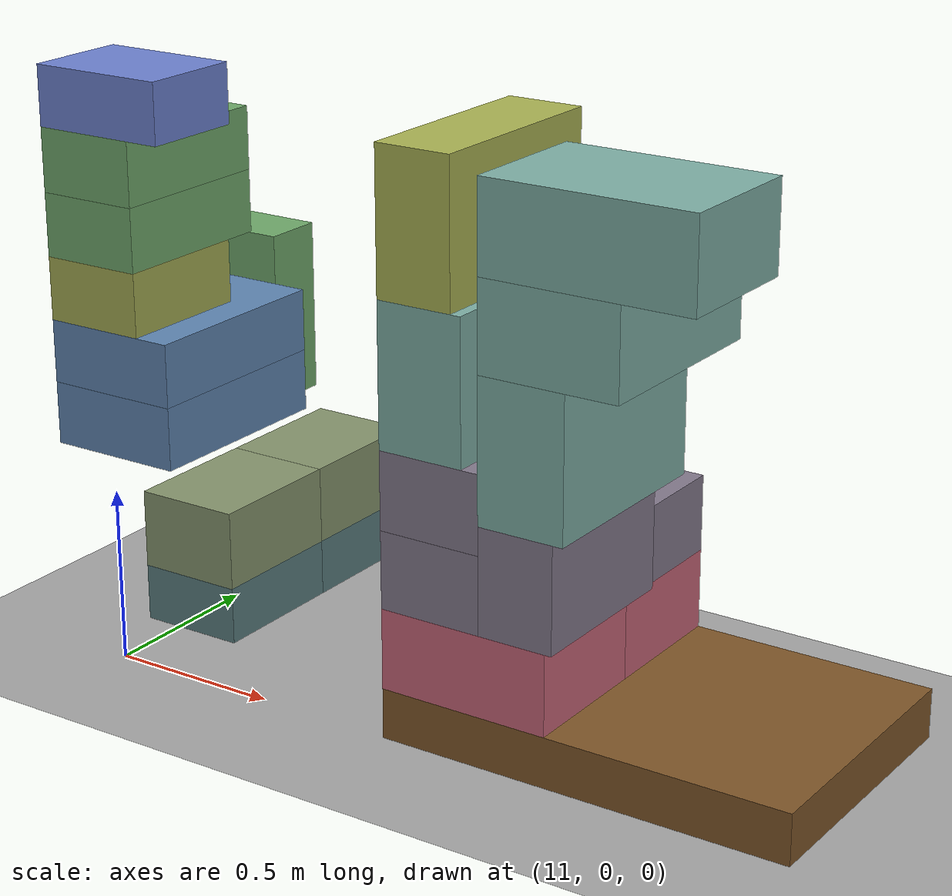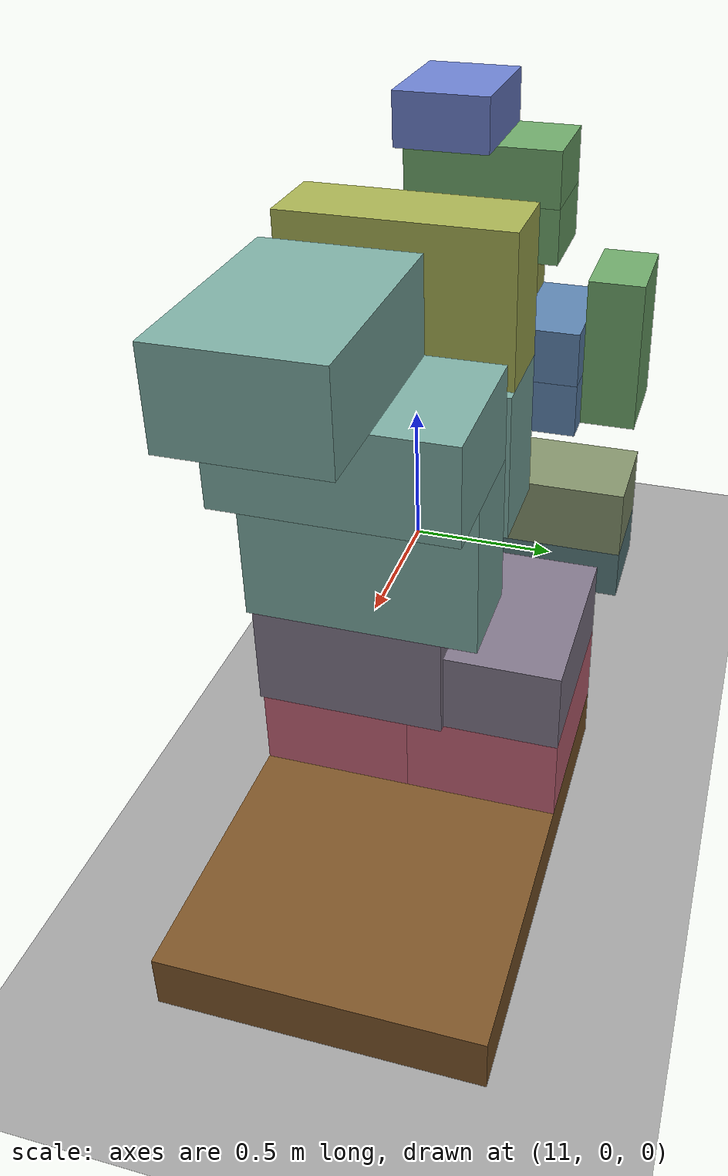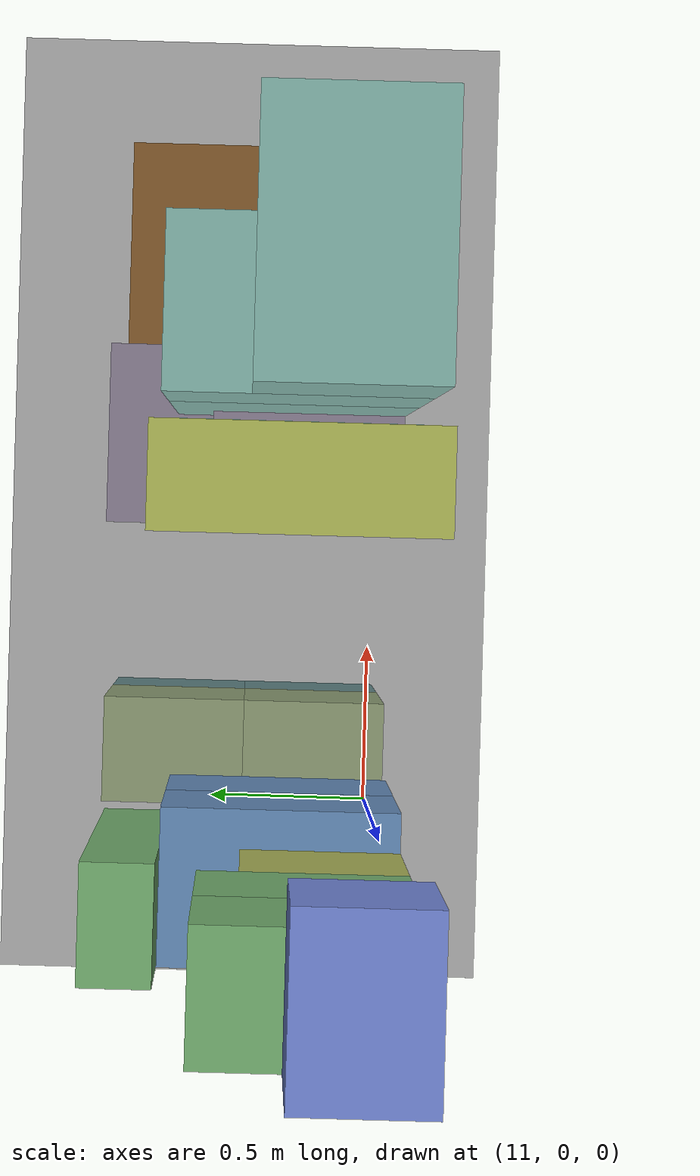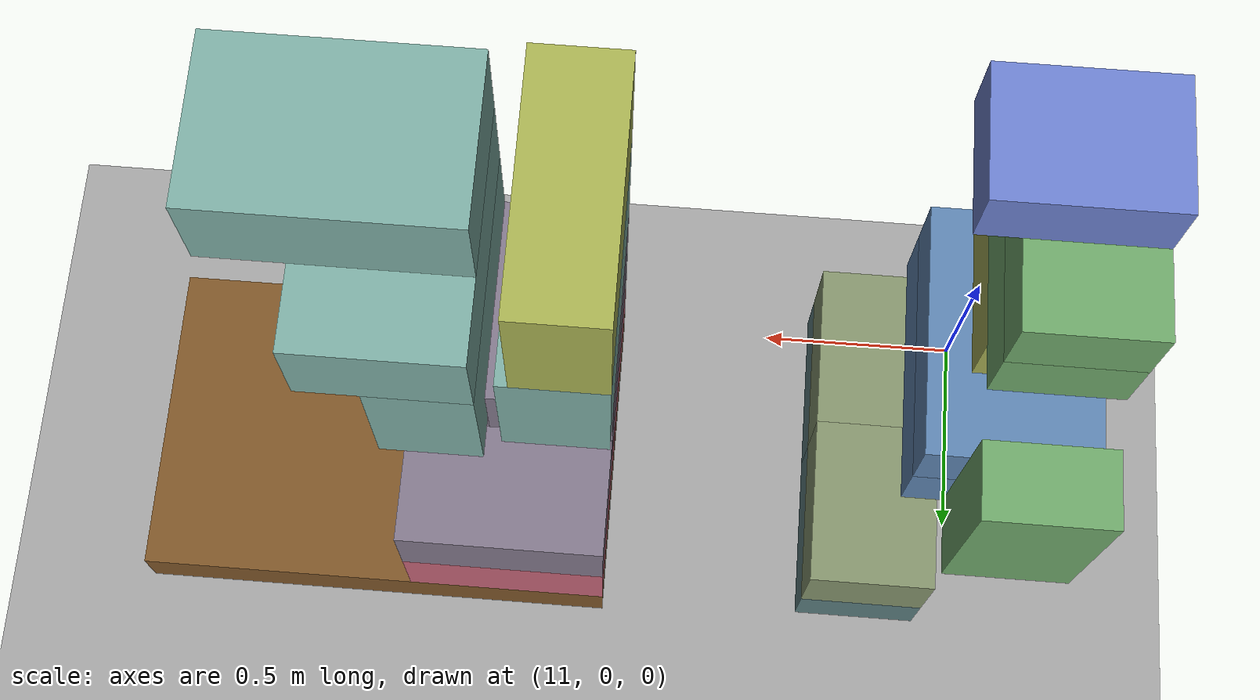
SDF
<sdf version="1.10">
 <world name="pallet_towers">
  <model name="ground_plane">
   <static>true</static>
   <link name="link">
    <collision name="collision">
     <geometry><plane><normal>0 0 1</normal><size>30 30</size></plane></geometry>
     <surface>
      <friction><ode><mu>0.35</mu><mu2>0.35</mu2></ode></friction>
      <bounce><restitution_coefficient>0</restitution_coefficient><threshold>100000</threshold></bounce>
      <contact><ode><kp>1000000</kp><kd>100</kd><max_vel>1</max_vel><min_depth>0.0005</min_depth></ode></contact>
     </surface>
    </collision>
    <visual name="visual">
     <geometry><plane><normal>0 0 1</normal><size>30 30</size></plane></geometry>
     <material><ambient>0.65 0.65 0.65 1</ambient><diffuse>0.65 0.65 0.65 1</diffuse></material>
    </visual>
   </link>
  </model>
  <model name="box_p07_0005_CHEESE_002_CHEESE">
   <static>false</static>
   <pose>11.25 0.6 0.224 0 0 0</pose>
   <link name="body">
    <inertial>
     <mass>9.5</mass>
     <inertia>
      <ixx>0.146933333</ixx>
      <ixy>0</ixy>
      <ixz>0</ixz>
      <iyy>0.0915166667</iyy>
      <iyz>0</iyz>
      <izz>0.197916667</izz>
     </inertia>
    </inertial>
    <collision name="collision">
     <geometry><box><size>0.3 0.4 0.16</size></box></geometry>
     <surface>
      <friction><ode><mu>0.35</mu><mu2>0.35</mu2></ode></friction>
      <bounce><restitution_coefficient>0</restitution_coefficient><threshold>100000</threshold></bounce>
      <contact><ode><kp>1000000</kp><kd>100</kd><max_vel>1</max_vel><min_depth>0.0005</min_depth></ode></contact>
     </surface>
    </collision>
    <visual name="visual">
     <geometry><box><size>0.3 0.4 0.16</size></box></geometry>
     <material>
      <ambient>0.356862745 0.494117647 0.501960784 1</ambient>
      <diffuse>0.356862745 0.494117647 0.501960784 1</diffuse>
      <specular>0.05 0.05 0.05 1</specular>
     </material>
    </visual>
   </link>
  </model>
  <model name="box_p07_0008_CHEESE_005_CHEESE">
   <static>false</static>
   <pose>11.25 0.2 0.224 0 0 0</pose>
   <link name="body">
    <inertial>
     <mass>9.5</mass>
     <inertia>
      <ixx>0.146933333</ixx>
      <ixy>0</ixy>
      <ixz>0</ixz>
      <iyy>0.0915166667</iyy>
      <iyz>0</iyz>
      <izz>0.197916667</izz>
     </inertia>
    </inertial>
    <collision name="collision">
     <geometry><box><size>0.3 0.4 0.16</size></box></geometry>
     <surface>
      <friction><ode><mu>0.35</mu><mu2>0.35</mu2></ode></friction>
      <bounce><restitution_coefficient>0</restitution_coefficient><threshold>100000</threshold></bounce>
      <contact><ode><kp>1000000</kp><kd>100</kd><max_vel>1</max_vel><min_depth>0.0005</min_depth></ode></contact>
     </surface>
    </collision>
    <visual name="visual">
     <geometry><box><size>0.3 0.4 0.16</size></box></geometry>
     <material>
      <ambient>0.356862745 0.494117647 0.501960784 1</ambient>
      <diffuse>0.356862745 0.494117647 0.501960784 1</diffuse>
      <specular>0.05 0.05 0.05 1</specular>
     </material>
    </visual>
   </link>
  </model>
  <model name="box_p07_0012_FRZVEG_003_FRZVEG">
   <static>false</static>
   <pose>11.25 0.2 0.414 0 0 0</pose>
   <link name="body">
    <inertial>
     <mass>7.5</mass>
     <inertia><ixx>0.13025</ixx><ixy>0</ixy><ixz>0</ixz><iyy>0.0865</iyy><iyz>0</iyz><izz>0.15625</izz></inertia>
    </inertial>
    <collision name="collision">
     <geometry><box><size>0.3 0.4 0.22</size></box></geometry>
     <surface>
      <friction><ode><mu>0.35</mu><mu2>0.35</mu2></ode></friction>
      <bounce><restitution_coefficient>0</restitution_coefficient><threshold>100000</threshold></bounce>
      <contact><ode><kp>1000000</kp><kd>100</kd><max_vel>1</max_vel><min_depth>0.0005</min_depth></ode></contact>
     </surface>
    </collision>
    <visual name="visual">
     <geometry><box><size>0.3 0.4 0.22</size></box></geometry>
     <material>
      <ambient>0.525490196 0.584313725 0.431372549 1</ambient>
      <diffuse>0.525490196 0.584313725 0.431372549 1</diffuse>
      <specular>0.05 0.05 0.05 1</specular>
     </material>
    </visual>
   </link>
  </model>
  <model name="box_p07_0013_FRZVEG_004_FRZVEG">
   <static>false</static>
   <pose>11.25 0.6 0.414 0 0 0</pose>
   <link name="body">
    <inertial>
     <mass>7.5</mass>
     <inertia><ixx>0.13025</ixx><ixy>0</ixy><ixz>0</ixz><iyy>0.0865</iyy><iyz>0</iyz><izz>0.15625</izz></inertia>
    </inertial>
    <collision name="collision">
     <geometry><box><size>0.3 0.4 0.22</size></box></geometry>
     <surface>
      <friction><ode><mu>0.35</mu><mu2>0.35</mu2></ode></friction>
      <bounce><restitution_coefficient>0</restitution_coefficient><threshold>100000</threshold></bounce>
      <contact><ode><kp>1000000</kp><kd>100</kd><max_vel>1</max_vel><min_depth>0.0005</min_depth></ode></contact>
     </surface>
    </collision>
    <visual name="visual">
     <geometry><box><size>0.3 0.4 0.22</size></box></geometry>
     <material>
      <ambient>0.525490196 0.584313725 0.431372549 1</ambient>
      <diffuse>0.525490196 0.584313725 0.431372549 1</diffuse>
      <specular>0.05 0.05 0.05 1</specular>
     </material>
    </visual>
   </link>
  </model>
  <model name="box_p07_0017_PIZZA_002_PIZZA">
   <static>false</static>
   <pose>11 0.3 0.694 0 0 0</pose>
   <link name="body">
    <inertial>
     <mass>6</mass>
     <inertia><ixx>0.1962</ixx><ixy>0</ixy><ixz>0</ixz><iyy>0.0962</iyy><iyz>0</iyz><izz>0.26</izz></inertia>
    </inertial>
    <collision name="collision">
     <geometry><box><size>0.4 0.6 0.18</size></box></geometry>
     <surface>
      <friction><ode><mu>0.35</mu><mu2>0.35</mu2></ode></friction>
      <bounce><restitution_coefficient>0</restitution_coefficient><threshold>100000</threshold></bounce>
      <contact><ode><kp>1000000</kp><kd>100</kd><max_vel>1</max_vel><min_depth>0.0005</min_depth></ode></contact>
     </surface>
    </collision>
    <visual name="visual">
     <geometry><box><size>0.4 0.6 0.18</size></box></geometry>
     <material>
      <ambient>0.37254902 0.525490196 0.701960784 1</ambient>
      <diffuse>0.37254902 0.525490196 0.701960784 1</diffuse>
      <specular>0.05 0.05 0.05 1</specular>
     </material>
    </visual>
   </link>
  </model>
  <model name="box_p07_0019_PIZZA_004_PIZZA">
   <static>false</static>
   <pose>11 0.3 0.874 0 0 0</pose>
   <link name="body">
    <inertial>
     <mass>6</mass>
     <inertia><ixx>0.1962</ixx><ixy>0</ixy><ixz>0</ixz><iyy>0.0962</iyy><iyz>0</iyz><izz>0.26</izz></inertia>
    </inertial>
    <collision name="collision">
     <geometry><box><size>0.4 0.6 0.18</size></box></geometry>
     <surface>
      <friction><ode><mu>0.35</mu><mu2>0.35</mu2></ode></friction>
      <bounce><restitution_coefficient>0</restitution_coefficient><threshold>100000</threshold></bounce>
      <contact><ode><kp>1000000</kp><kd>100</kd><max_vel>1</max_vel><min_depth>0.0005</min_depth></ode></contact>
     </surface>
    </collision>
    <visual name="visual">
     <geometry><box><size>0.4 0.6 0.18</size></box></geometry>
     <material>
      <ambient>0.37254902 0.525490196 0.701960784 1</ambient>
      <diffuse>0.37254902 0.525490196 0.701960784 1</diffuse>
      <specular>0.05 0.05 0.05 1</specular>
     </material>
    </visual>
   </link>
  </model>
  <model name="box_p07_0026_SALMON_005_SALMON">
   <static>false</static>
   <pose>10.95 0.2 1.054 0 0 0</pose>
   <link name="body">
    <inertial>
     <mass>8.5</mass>
     <inertia>
      <ixx>0.136283333</ixx>
      <ixy>0</ixy>
      <ixz>0</ixz>
      <iyy>0.0867</iyy>
      <iyz>0</iyz>
      <izz>0.177083333</izz>
     </inertia>
    </inertial>
    <collision name="collision">
     <geometry><box><size>0.3 0.4 0.18</size></box></geometry>
     <surface>
      <friction><ode><mu>0.35</mu><mu2>0.35</mu2></ode></friction>
      <bounce><restitution_coefficient>0</restitution_coefficient><threshold>100000</threshold></bounce>
      <contact><ode><kp>1000000</kp><kd>100</kd><max_vel>1</max_vel><min_depth>0.0005</min_depth></ode></contact>
     </surface>
    </collision>
    <visual name="visual">
     <geometry><box><size>0.3 0.4 0.18</size></box></geometry>
     <material>
      <ambient>0.647058824 0.678431373 0.329411765 1</ambient>
      <diffuse>0.647058824 0.678431373 0.329411765 1</diffuse>
      <specular>0.05 0.05 0.05 1</specular>
     </material>
    </visual>
   </link>
  </model>
  <model name="box_p07_0029_CHICKEN_002_CHICKEN">
   <static>false</static>
   <pose>10.95 0.25 1.234 0 0 0</pose>
   <link name="body">
    <inertial>
     <mass>10</mass>
     <inertia>
      <ixx>0.235333333</ixx>
      <ixy>0</ixy>
      <ixz>0</ixz>
      <iyy>0.102</iyy>
      <iyz>0</iyz>
      <izz>0.283333333</izz>
     </inertia>
    </inertial>
    <collision name="collision">
     <geometry><box><size>0.3 0.5 0.18</size></box></geometry>
     <surface>
      <friction><ode><mu>0.35</mu><mu2>0.35</mu2></ode></friction>
      <bounce><restitution_coefficient>0</restitution_coefficient><threshold>100000</threshold></bounce>
      <contact><ode><kp>1000000</kp><kd>100</kd><max_vel>1</max_vel><min_depth>0.0005</min_depth></ode></contact>
     </surface>
    </collision>
    <visual name="visual">
     <geometry><box><size>0.3 0.5 0.18</size></box></geometry>
     <material>
      <ambient>0.439215686 0.666666667 0.423529412 1</ambient>
      <diffuse>0.439215686 0.666666667 0.423529412 1</diffuse>
      <specular>0.05 0.05 0.05 1</specular>
     </material>
    </visual>
   </link>
  </model>
  <model name="box_p07_0031_CHICKEN_004_CHICKEN">
   <static>false</static>
   <pose>10.95 0.69 0.854 0 0 0</pose>
   <link name="body">
    <inertial>
     <mass>10</mass>
     <inertia>
      <ixx>0.235333333</ixx>
      <ixy>0</ixy>
      <ixz>0</ixz>
      <iyy>0.283333333</iyy>
      <iyz>0</iyz>
      <izz>0.102</izz>
     </inertia>
    </inertial>
    <collision name="collision">
     <geometry><box><size>0.3 0.18 0.5</size></box></geometry>
     <surface>
      <friction><ode><mu>0.35</mu><mu2>0.35</mu2></ode></friction>
      <bounce><restitution_coefficient>0</restitution_coefficient><threshold>100000</threshold></bounce>
      <contact><ode><kp>1000000</kp><kd>100</kd><max_vel>1</max_vel><min_depth>0.0005</min_depth></ode></contact>
     </surface>
    </collision>
    <visual name="visual">
     <geometry><box><size>0.3 0.18 0.5</size></box></geometry>
     <material>
      <ambient>0.439215686 0.666666667 0.423529412 1</ambient>
      <diffuse>0.439215686 0.666666667 0.423529412 1</diffuse>
      <specular>0.05 0.05 0.05 1</specular>
     </material>
    </visual>
   </link>
  </model>
  <model name="box_p07_0032_CHICKEN_005_CHICKEN">
   <static>false</static>
   <pose>10.95 0.25 1.414 0 0 0</pose>
   <link name="body">
    <inertial>
     <mass>10</mass>
     <inertia>
      <ixx>0.235333333</ixx>
      <ixy>0</ixy>
      <ixz>0</ixz>
      <iyy>0.102</iyy>
      <iyz>0</iyz>
      <izz>0.283333333</izz>
     </inertia>
    </inertial>
    <collision name="collision">
     <geometry><box><size>0.3 0.5 0.18</size></box></geometry>
     <surface>
      <friction><ode><mu>0.35</mu><mu2>0.35</mu2></ode></friction>
      <bounce><restitution_coefficient>0</restitution_coefficient><threshold>100000</threshold></bounce>
      <contact><ode><kp>1000000</kp><kd>100</kd><max_vel>1</max_vel><min_depth>0.0005</min_depth></ode></contact>
     </surface>
    </collision>
    <visual name="visual">
     <geometry><box><size>0.3 0.5 0.18</size></box></geometry>
     <material>
      <ambient>0.439215686 0.666666667 0.423529412 1</ambient>
      <diffuse>0.439215686 0.666666667 0.423529412 1</diffuse>
      <specular>0.05 0.05 0.05 1</specular>
     </material>
    </visual>
   </link>
  </model>
  <model name="box_p07_0037_BEEF_004_BEEF">
   <static>false</static>
   <pose>11 0.15 1.589 0 0 0</pose>
   <link name="body">
    <inertial>
     <mass>12</mass>
     <inertia><ixx>0.1189</ixx><ixy>0</ixy><ixz>0</ixz><iyy>0.1889</iyy><iyz>0</iyz><izz>0.25</izz></inertia>
    </inertial>
    <collision name="collision">
     <geometry><box><size>0.4 0.3 0.17</size></box></geometry>
     <surface>
      <friction><ode><mu>0.35</mu><mu2>0.35</mu2></ode></friction>
      <bounce><restitution_coefficient>0</restitution_coefficient><threshold>100000</threshold></bounce>
      <contact><ode><kp>1000000</kp><kd>100</kd><max_vel>1</max_vel><min_depth>0.0005</min_depth></ode></contact>
     </surface>
    </collision>
    <visual name="visual">
     <geometry><box><size>0.4 0.3 0.17</size></box></geometry>
     <material>
      <ambient>0.431372549 0.51372549 0.823529412 1</ambient>
      <diffuse>0.431372549 0.51372549 0.823529412 1</diffuse>
      <specular>0.05 0.05 0.05 1</specular>
     </material>
    </visual>
   </link>
  </model>
  <model name="pallet_08_8">
   <static>false</static>
   <pose>12.5 0.4 0.072 0 0 0</pose>
   <link name="body">
    <inertial>
     <mass>25</mass>
     <inertia>
      <ixx>1.37653333</ixx>
      <ixy>0</ixy>
      <ixz>0</ixz>
      <iyy>3.0432</iyy>
      <iyz>0</iyz>
      <izz>4.33333333</izz>
     </inertia>
    </inertial>
    <collision name="collision">
     <geometry><box><size>1.2 0.8 0.144</size></box></geometry>
     <surface>
      <friction><ode><mu>0.35</mu><mu2>0.35</mu2></ode></friction>
      <bounce><restitution_coefficient>0</restitution_coefficient><threshold>100000</threshold></bounce>
      <contact><ode><kp>1000000</kp><kd>100</kd><max_vel>1</max_vel><min_depth>0.0005</min_depth></ode></contact>
     </surface>
    </collision>
    <visual name="visual">
     <geometry><box><size>1.2 0.8 0.144</size></box></geometry>
     <material>
      <ambient>0.5 0.34 0.16 1</ambient>
      <diffuse>0.5 0.34 0.16 1</diffuse>
      <specular>0.05 0.05 0.05 1</specular>
     </material>
    </visual>
   </link>
  </model>
  <model name="box_p08_0003_CARROT_003_CARROT">
   <static>false</static>
   <pose>12.15 0.6 0.259 0 0 0</pose>
   <link name="body">
    <inertial>
     <mass>12</mass>
     <inertia><ixx>0.2129</ixx><ixy>0</ixy><ixz>0</ixz><iyy>0.3029</iyy><iyz>0</iyz><izz>0.41</izz></inertia>
    </inertial>
    <collision name="collision">
     <geometry><box><size>0.5 0.4 0.23</size></box></geometry>
     <surface>
      <friction><ode><mu>0.35</mu><mu2>0.35</mu2></ode></friction>
      <bounce><restitution_coefficient>0</restitution_coefficient><threshold>100000</threshold></bounce>
      <contact><ode><kp>1000000</kp><kd>100</kd><max_vel>1</max_vel><min_depth>0.0005</min_depth></ode></contact>
     </surface>
    </collision>
    <visual name="visual">
     <geometry><box><size>0.5 0.4 0.23</size></box></geometry>
     <material>
      <ambient>0.784313725 0.4 0.474509804 1</ambient>
      <diffuse>0.784313725 0.4 0.474509804 1</diffuse>
      <specular>0.05 0.05 0.05 1</specular>
     </material>
    </visual>
   </link>
  </model>
  <model name="box_p08_0004_CARROT_004_CARROT">
   <static>false</static>
   <pose>12.15 0.2 0.259 0 0 0</pose>
   <link name="body">
    <inertial>
     <mass>12</mass>
     <inertia><ixx>0.2129</ixx><ixy>0</ixy><ixz>0</ixz><iyy>0.3029</iyy><iyz>0</iyz><izz>0.41</izz></inertia>
    </inertial>
    <collision name="collision">
     <geometry><box><size>0.5 0.4 0.23</size></box></geometry>
     <surface>
      <friction><ode><mu>0.35</mu><mu2>0.35</mu2></ode></friction>
      <bounce><restitution_coefficient>0</restitution_coefficient><threshold>100000</threshold></bounce>
      <contact><ode><kp>1000000</kp><kd>100</kd><max_vel>1</max_vel><min_depth>0.0005</min_depth></ode></contact>
     </surface>
    </collision>
    <visual name="visual">
     <geometry><box><size>0.5 0.4 0.23</size></box></geometry>
     <material>
      <ambient>0.784313725 0.4 0.474509804 1</ambient>
      <diffuse>0.784313725 0.4 0.474509804 1</diffuse>
      <specular>0.05 0.05 0.05 1</specular>
     </material>
    </visual>
   </link>
  </model>
  <model name="box_p08_0007_CUCUMBER_001_CUCUMBER">
   <static>false</static>
   <pose>12.05 0.25 0.484 0 0 0</pose>
   <link name="body">
    <inertial>
     <mass>8</mass>
     <inertia>
      <ixx>0.198933333</ixx>
      <ixy>0</ixy>
      <ixz>0</ixz>
      <iyy>0.0922666667</iyy>
      <iyz>0</iyz>
      <izz>0.226666667</izz>
     </inertia>
    </inertial>
    <collision name="collision">
     <geometry><box><size>0.3 0.5 0.22</size></box></geometry>
     <surface>
      <friction><ode><mu>0.35</mu><mu2>0.35</mu2></ode></friction>
      <bounce><restitution_coefficient>0</restitution_coefficient><threshold>100000</threshold></bounce>
      <contact><ode><kp>1000000</kp><kd>100</kd><max_vel>1</max_vel><min_depth>0.0005</min_depth></ode></contact>
     </surface>
    </collision>
    <visual name="visual">
     <geometry><box><size>0.3 0.5 0.22</size></box></geometry>
     <material>
      <ambient>0.517647059 0.478431373 0.552941176 1</ambient>
      <diffuse>0.517647059 0.478431373 0.552941176 1</diffuse>
      <specular>0.05 0.05 0.05 1</specular>
     </material>
    </visual>
   </link>
  </model>
  <model name="box_p08_0008_CUCUMBER_002_CUCUMBER">
   <static>false</static>
   <pose>12.15 0.65 0.484 0 0 0</pose>
   <link name="body">
    <inertial>
     <mass>8</mass>
     <inertia>
      <ixx>0.0922666667</ixx>
      <ixy>0</ixy>
      <ixz>0</ixz>
      <iyy>0.198933333</iyy>
      <iyz>0</iyz>
      <izz>0.226666667</izz>
     </inertia>
    </inertial>
    <collision name="collision">
     <geometry><box><size>0.5 0.3 0.22</size></box></geometry>
     <surface>
      <friction><ode><mu>0.35</mu><mu2>0.35</mu2></ode></friction>
      <bounce><restitution_coefficient>0</restitution_coefficient><threshold>100000</threshold></bounce>
      <contact><ode><kp>1000000</kp><kd>100</kd><max_vel>1</max_vel><min_depth>0.0005</min_depth></ode></contact>
     </surface>
    </collision>
    <visual name="visual">
     <geometry><box><size>0.5 0.3 0.22</size></box></geometry>
     <material>
      <ambient>0.517647059 0.478431373 0.552941176 1</ambient>
      <diffuse>0.517647059 0.478431373 0.552941176 1</diffuse>
      <specular>0.05 0.05 0.05 1</specular>
     </material>
    </visual>
   </link>
  </model>
  <model name="box_p08_0009_CUCUMBER_003_CUCUMBER">
   <static>false</static>
   <pose>12.31 0.25 0.524 0 0 0</pose>
   <link name="body">
    <inertial>
     <mass>8</mass>
     <inertia>
      <ixx>0.226666667</ixx>
      <ixy>0</ixy>
      <ixz>0</ixz>
      <iyy>0.0922666667</iyy>
      <iyz>0</iyz>
      <izz>0.198933333</izz>
     </inertia>
    </inertial>
    <collision name="collision">
     <geometry><box><size>0.22 0.5 0.3</size></box></geometry>
     <surface>
      <friction><ode><mu>0.35</mu><mu2>0.35</mu2></ode></friction>
      <bounce><restitution_coefficient>0</restitution_coefficient><threshold>100000</threshold></bounce>
      <contact><ode><kp>1000000</kp><kd>100</kd><max_vel>1</max_vel><min_depth>0.0005</min_depth></ode></contact>
     </surface>
    </collision>
    <visual name="visual">
     <geometry><box><size>0.22 0.5 0.3</size></box></geometry>
     <material>
      <ambient>0.517647059 0.478431373 0.552941176 1</ambient>
      <diffuse>0.517647059 0.478431373 0.552941176 1</diffuse>
      <specular>0.05 0.05 0.05 1</specular>
     </material>
    </visual>
   </link>
  </model>
  <model name="box_p08_0012_CUCUMBER_006_CUCUMBER">
   <static>false</static>
   <pose>12.05 0.25 0.704 0 0 0</pose>
   <link name="body">
    <inertial>
     <mass>8</mass>
     <inertia>
      <ixx>0.198933333</ixx>
      <ixy>0</ixy>
      <ixz>0</ixz>
      <iyy>0.0922666667</iyy>
      <iyz>0</iyz>
      <izz>0.226666667</izz>
     </inertia>
    </inertial>
    <collision name="collision">
     <geometry><box><size>0.3 0.5 0.22</size></box></geometry>
     <surface>
      <friction><ode><mu>0.35</mu><mu2>0.35</mu2></ode></friction>
      <bounce><restitution_coefficient>0</restitution_coefficient><threshold>100000</threshold></bounce>
      <contact><ode><kp>1000000</kp><kd>100</kd><max_vel>1</max_vel><min_depth>0.0005</min_depth></ode></contact>
     </surface>
    </collision>
    <visual name="visual">
     <geometry><box><size>0.3 0.5 0.22</size></box></geometry>
     <material>
      <ambient>0.517647059 0.478431373 0.552941176 1</ambient>
      <diffuse>0.517647059 0.478431373 0.552941176 1</diffuse>
      <specular>0.05 0.05 0.05 1</specular>
     </material>
    </visual>
   </link>
  </model>
  <model name="box_p08_0014_LETTUCE_002_LETTUCE">
   <static>false</static>
   <pose>12.325 0.3 0.874 0 0 0</pose>
   <link name="body">
    <inertial>
     <mass>5</mass>
     <inertia>
      <ixx>0.216666667</ixx>
      <ixy>0</ixy>
      <ixz>0</ixz>
      <iyy>0.0927083333</iyy>
      <iyz>0</iyz>
      <izz>0.176041667</izz>
     </inertia>
    </inertial>
    <collision name="collision">
     <geometry><box><size>0.25 0.6 0.4</size></box></geometry>
     <surface>
      <friction><ode><mu>0.35</mu><mu2>0.35</mu2></ode></friction>
      <bounce><restitution_coefficient>0</restitution_coefficient><threshold>100000</threshold></bounce>
      <contact><ode><kp>1000000</kp><kd>100</kd><max_vel>1</max_vel><min_depth>0.0005</min_depth></ode></contact>
     </surface>
    </collision>
    <visual name="visual">
     <geometry><box><size>0.25 0.6 0.4</size></box></geometry>
     <material>
      <ambient>0.498039216 0.690196078 0.650980392 1</ambient>
      <diffuse>0.498039216 0.690196078 0.650980392 1</diffuse>
      <specular>0.05 0.05 0.05 1</specular>
     </material>
    </visual>
   </link>
  </model>
  <model name="box_p08_0015_LETTUCE_003_LETTUCE">
   <static>false</static>
   <pose>12.4 0.3 1.199 0 0 0</pose>
   <link name="body">
    <inertial>
     <mass>5</mass>
     <inertia>
      <ixx>0.176041667</ixx>
      <ixy>0</ixy>
      <ixz>0</ixz>
      <iyy>0.0927083333</iyy>
      <iyz>0</iyz>
      <izz>0.216666667</izz>
     </inertia>
    </inertial>
    <collision name="collision">
     <geometry><box><size>0.4 0.6 0.25</size></box></geometry>
     <surface>
      <friction><ode><mu>0.35</mu><mu2>0.35</mu2></ode></friction>
      <bounce><restitution_coefficient>0</restitution_coefficient><threshold>100000</threshold></bounce>
      <contact><ode><kp>1000000</kp><kd>100</kd><max_vel>1</max_vel><min_depth>0.0005</min_depth></ode></contact>
     </surface>
    </collision>
    <visual name="visual">
     <geometry><box><size>0.4 0.6 0.25</size></box></geometry>
     <material>
      <ambient>0.498039216 0.690196078 0.650980392 1</ambient>
      <diffuse>0.498039216 0.690196078 0.650980392 1</diffuse>
      <specular>0.05 0.05 0.05 1</specular>
     </material>
    </visual>
   </link>
  </model>
  <model name="box_p08_0017_LETTUCE_005_LETTUCE">
   <static>false</static>
   <pose>12.025 0.3 1.014 0 0 0</pose>
   <link name="body">
    <inertial>
     <mass>5</mass>
     <inertia>
      <ixx>0.216666667</ixx>
      <ixy>0</ixy>
      <ixz>0</ixz>
      <iyy>0.0927083333</iyy>
      <iyz>0</iyz>
      <izz>0.176041667</izz>
     </inertia>
    </inertial>
    <collision name="collision">
     <geometry><box><size>0.25 0.6 0.4</size></box></geometry>
     <surface>
      <friction><ode><mu>0.35</mu><mu2>0.35</mu2></ode></friction>
      <bounce><restitution_coefficient>0</restitution_coefficient><threshold>100000</threshold></bounce>
      <contact><ode><kp>1000000</kp><kd>100</kd><max_vel>1</max_vel><min_depth>0.0005</min_depth></ode></contact>
     </surface>
    </collision>
    <visual name="visual">
     <geometry><box><size>0.25 0.6 0.4</size></box></geometry>
     <material>
      <ambient>0.498039216 0.690196078 0.650980392 1</ambient>
      <diffuse>0.498039216 0.690196078 0.650980392 1</diffuse>
      <specular>0.05 0.05 0.05 1</specular>
     </material>
    </visual>
   </link>
  </model>
  <model name="box_p08_0018_LETTUCE_006_LETTUCE">
   <static>false</static>
   <pose>12.5 0.2 1.449 0 0 0</pose>
   <link name="body">
    <inertial>
     <mass>5</mass>
     <inertia>
      <ixx>0.0927083333</ixx>
      <ixy>0</ixy>
      <ixz>0</ixz>
      <iyy>0.176041667</iyy>
      <iyz>0</iyz>
      <izz>0.216666667</izz>
     </inertia>
    </inertial>
    <collision name="collision">
     <geometry><box><size>0.6 0.4 0.25</size></box></geometry>
     <surface>
      <friction><ode><mu>0.35</mu><mu2>0.35</mu2></ode></friction>
      <bounce><restitution_coefficient>0</restitution_coefficient><threshold>100000</threshold></bounce>
      <contact><ode><kp>1000000</kp><kd>100</kd><max_vel>1</max_vel><min_depth>0.0005</min_depth></ode></contact>
     </surface>
    </collision>
    <visual name="visual">
     <geometry><box><size>0.6 0.4 0.25</size></box></geometry>
     <material>
      <ambient>0.498039216 0.690196078 0.650980392 1</ambient>
      <diffuse>0.498039216 0.690196078 0.650980392 1</diffuse>
      <specular>0.05 0.05 0.05 1</specular>
     </material>
    </visual>
   </link>
  </model>
  <model name="box_p08_0020_ORANGE_002_ORANGE">
   <static>false</static>
   <pose>12.01 0.3 1.414 0 0 0</pose>
   <link name="body">
    <inertial>
     <mass>13</mass>
     <inertia>
      <ixx>0.563333333</ixx>
      <ixy>0</ixy>
      <ixz>0</ixz>
      <iyy>0.225766667</iyy>
      <iyz>0</iyz>
      <izz>0.442433333</izz>
     </inertia>
    </inertial>
    <collision name="collision">
     <geometry><box><size>0.22 0.6 0.4</size></box></geometry>
     <surface>
      <friction><ode><mu>0.35</mu><mu2>0.35</mu2></ode></friction>
      <bounce><restitution_coefficient>0</restitution_coefficient><threshold>100000</threshold></bounce>
      <contact><ode><kp>1000000</kp><kd>100</kd><max_vel>1</max_vel><min_depth>0.0005</min_depth></ode></contact>
     </surface>
    </collision>
    <visual name="visual">
     <geometry><box><size>0.22 0.6 0.4</size></box></geometry>
     <material>
      <ambient>0.670588235 0.705882353 0.329411765 1</ambient>
      <diffuse>0.670588235 0.705882353 0.329411765 1</diffuse>
      <specular>0.05 0.05 0.05 1</specular>
     </material>
    </visual>
   </link>
  </model>
 </world>
</sdf>
